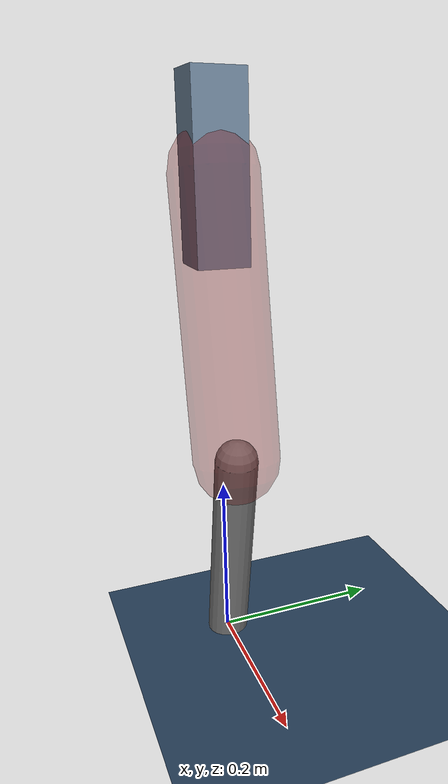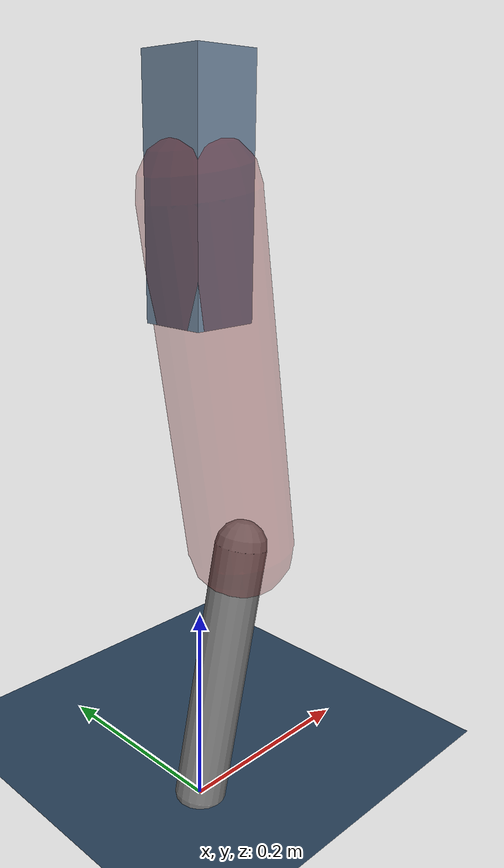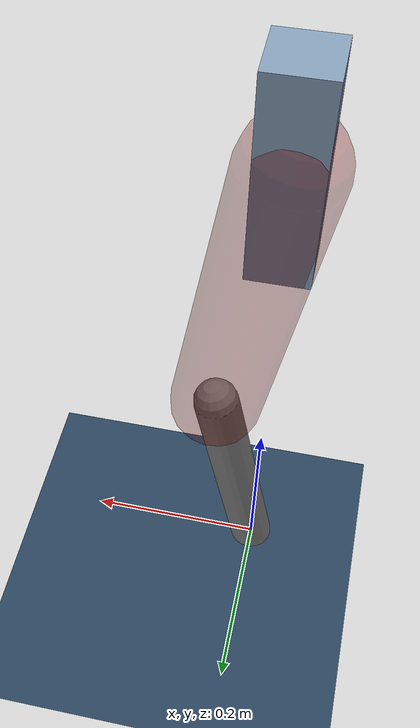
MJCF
<mujoco model="Hopper2D">
	<compiler inertiafromgeom="true" angle="radian" />
	<option timestep="0.001" integrator="implicit" cone="elliptic" solver="Newton" tolerance="1e-10" />

	<default>
		<geom contype="1" conaffinity="1" condim="3" friction="2 0.005 0.0001" solref="0.005 1" />
		<joint limited="true" damping="0.1" />
	</default>

	<asset>
		<texture name="skybox" type="skybox" builtin="gradient" rgb1=".4 .6 .8" rgb2="0 0 0" width="800" height="800" />
		<texture name="grid" type="2d" builtin="checker" rgb1=".1 .2 .3" rgb2=".2 .3 .4" width="300" height="300" mark="edge" markrgb=".2 .3 .4" />
		<material name="ground" texture="grid" texrepeat="1 1" texuniform="true" reflectance="0.1" />
		<material name="leg" rgba="0.5 0.6 0.7 1" />
	</asset>

	<worldbody>

		<geom name="floor" type="plane" size="5 5 0.25" material="ground" />

		<light directional="false" diffuse="0.8 0.8 0.8" specular="0.3 0.3 0.3" pos="0 0 2" dir="0 0 -1" />
		<light mode="targetbodycom" target="base" directional="false" diffuse="0.8 0.8 0.8" specular="0.3 0.3 0.3" pos="0 0 2" dir="0 0 -1" />

		<camera name="fixed" pos="0 -2 1" xyaxes="1 0 0 0 0 1" />
		<camera name="tracking" mode="trackcom" pos="0 -3 1" />

		<body name="root" pos="0 0 0.5677540530418509">
			<joint name="slide_x" type="slide" axis="1 0 0" range="-100 100" />
			<joint name="slide_z" type="slide" axis="0 0 1" range="0 10" />

			<body name="base" pos="0 0 0">
				<geom name="torso" type="box" size="0.03 0.03 0.1" mass="2.258" material="leg" />

				<body name="link1" pos="0 0 0" euler="0 1.4030539556026909 0">
					<joint type="hinge" axis="0 -1 0" pos="0 0 0" name="hinge1" limited="true" range="-3.14 3.14" stiffness="0" damping="0.1" />
					<geom name="thigh" type="capsule" fromto="0 0 0 0.3187477928063087 0 0" size="0.05" rgba="0.5 0 0 0.3" mass="1.0398190405770336" />

					<body name="link2" pos="0.3187477928063087 0 0" euler="0 0.3746827759101545 0">
						<joint type="hinge" axis="0 -1 0" pos="0 0 0" name="hinge2" limited="true" range="-3.14 3.14" stiffness="0" damping="0.1" />
						<geom name="shank" type="capsule" fromto="0 0 0 0.2590062602355422 0 0" size="0.025" mass="0.44990500818843376" />

					</body>
				</body>
			</body>
		</body>
	</worldbody>

	<actuator>
		<motor name="torque1" joint="hinge1" ctrlrange="-81.94263634504489 81.94263634504489" ctrllimited="true" gear="1" />
		<motor name="torque2" joint="hinge2" ctrlrange="-108.02690021068126 108.02690021068126" ctrllimited="true" gear="1" />
	</actuator>
</mujoco>
